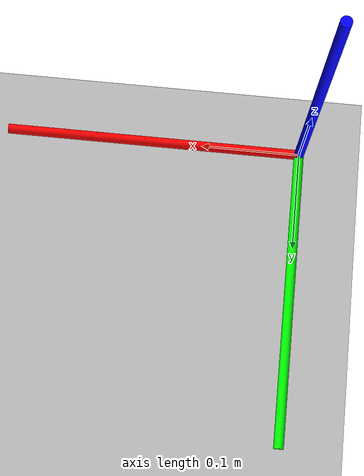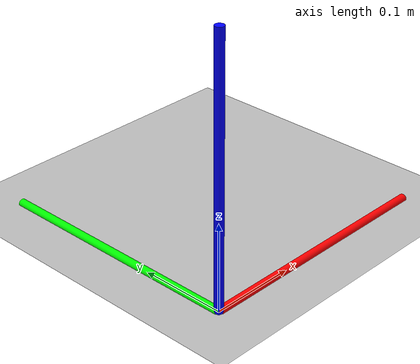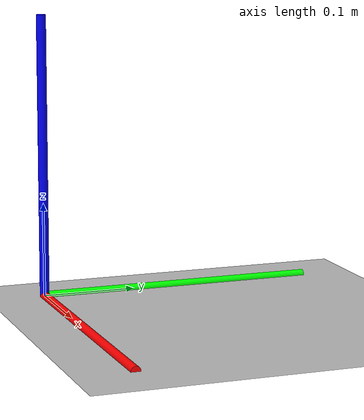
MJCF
<mujoco model="empty_floor">
  <compiler angle="radian"/>

  <option timestep="0.001" gravity="0 0 -9.81" impratio="10">
      <flag contact="enable" energy="enable" gravity="enable"/>
  </option>

  <asset>
    <texture type="skybox" builtin="gradient" rgb1="0.68 0.68 0.68" rgb2="0.3 0.3 0.3" width="512" height="3072"/>
    <texture name="groundplane" type="2d" builtin="checker" mark="edge"  rgb1="0.68 0.68 0.68" rgb2="0.8 0.8 0.8"
      markrgb="0.68 0.68 0.68" width="300" height="300"/>
    <material name="groundplane" reflectance="0.2" shininess="0.0" specular="0.0" texrepeat="5 5" texture="groundplane" texuniform="true"/>
  </asset>

  <worldbody>
    <!-- X轴：红色 -->
    <geom type="cylinder" fromto="0 0 0 0.3 0 0" size="0.005" rgba="1 0 0 1"/>
    <!-- Y轴：绿色 -->
    <geom type="cylinder" fromto="0 0 0 0 0.3 0" size="0.005" rgba="0 1 0 1"/>
    <!-- Z轴：蓝色 -->
    <geom type="cylinder" fromto="0 0 0 0 0 0.3" size="0.005" rgba="0 0 1 1"/>

    <!-- Floor -->
    <geom condim="3" material="groundplane" name="floor" pos="0 0 0" size="3 3 .125" type="plane"/>
    <light diffuse=".8 .8 .8" dir="0 -.15 -1" directional="false" pos="1 1 8.0" specular="0.3 0.3 0.3" castshadow="false"/>
    <light diffuse=".8 .8 .8" dir="0 -.15 -1" directional="false" pos="-3. -3. 8.0" specular="0.3 0.3 0.3" castshadow="false"/>
    <!-- front view -->
    <camera mode="fixed" name="frontview" pos="1.6 0 1.45" quat="0.56 0.43 0.43 0.56"/>
    <!-- bird view -->
    <camera mode="fixed" name="birdview" pos="-0.2 0 3.0" quat="0.7071 0 0 0.7071"/>
    <!-- agent view -->
    <camera mode="fixed" name="agentview" pos="0.5 0 1.35" quat="0.653 0.271 0.271 0.653"/>
    <!-- side view -->
    <camera mode="fixed" name="sideview" pos="-0.05651774593317116 1.2761224129427358 1.4879572214102434" quat="0.009905065491771751 0.006877963156909582 0.5912228352893879 0.806418094001364" />
  </worldbody>
</mujoco>
